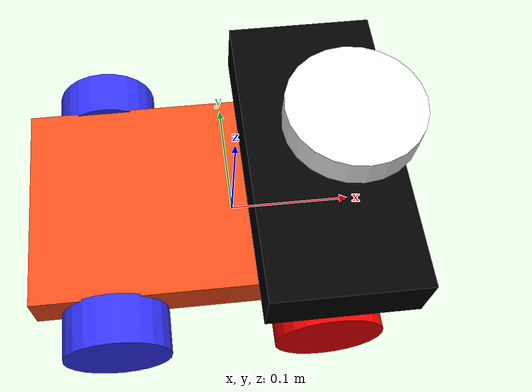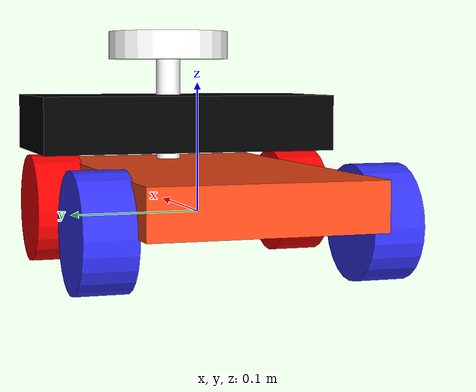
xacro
<?xml version="1.0"?>
<robot xmlns:xacro="http://www.ros.org/wiki/xacro">

    <xacro:include filename="inertial_macros.xacro" />

    <xacro:property name="chassis_length" value="0.290" />
    <xacro:property name="chassis_width" value="0.170" />
    <xacro:property name="chassis_height" value="0.036" />

    <xacro:property name="head_length" value="${chassis_length/2.5}" />
    <xacro:property name="head_width" value="${chassis_width*1.4}" />
    <xacro:property name="head_height" value="0.0448" />

    <xacro:property name="wheel_radius" value="0.0425" />
    <xacro:property name="wheel_thickness" value="0.038" />

    <xacro:property name="front_wheel_offset_x" value="${0.125 - wheel_radius}" />
    <xacro:property name="front_wheel_offset_y" value="${0.1024}" />
    <xacro:property name="front_wheel_offset_z" value="${wheel_radius}" />

    <xacro:property name="back_wheel_offset_x" value="${0.125 - wheel_radius}" />
    <xacro:property name="back_wheel_offset_y" value="${front_wheel_offset_y}" />
    <xacro:property name="back_wheel_offset_z" value="${front_wheel_offset_z}" />

    <xacro:property name="lidar_height" value="0.023" />
    <xacro:property name="lidar_offset_x" value="${front_wheel_offset_x + 0.02}" />
    <xacro:property name="lidar_offset_z" value="${chassis_height + head_height + front_wheel_offset_z}" />

    <xacro:property name="imu_length" value="0.030" />
    <xacro:property name="imu_width" value="0.015" />
    <xacro:property name="imu_offset_x" value="${front_wheel_offset_x + centre_of_rot_offset_x + imu_length/2 + 0.04}" />
    <xacro:property name="imu_offset_y" value="0.0" />
    <xacro:property name="imu_offset_z" value="${chassis_height + head_height + 0.02}" />

    <xacro:property name="chassis_mass" value="1.0" />
    <xacro:property name="lidar_mass" value="0.01" />
    <xacro:property name="head_mass" value="0.01" />
    <xacro:property name="imu_mass" value="0.001" />
    <xacro:property name="wheel_mass" value="0.05" />

    <xacro:property name="mu1" value="0.25" />
    <xacro:property name="mu2" value="0.25" />
    <xacro:property name="sl1" value="10.0" />
    <xacro:property name="sl2" value="10.0" />

    <xacro:property name="centre_of_rot_offset_x" value="${-0.02}" />

    <material name="white">
        <color rgba="1 1 1 1" />
    </material>

    <material name="orange">
        <color rgba="1 0.3 0.1 1" />
    </material>

    <material name="blue">
        <color rgba="0.2 0.2 1 1" />
    </material>

    <material name="black">
        <color rgba="0 0 0 1" />
    </material>

    <material name="red">
        <color rgba="1 0 0 1" />
    </material>

    <!-- BASE LINK -->

    <link name="base_link">

    </link>

    <!-- BASE_FOOTPRINT LINK -->

    <joint name="base_footprint_joint" type="fixed">
        <parent link="base_link" />
        <child link="base_footprint" />
        <origin xyz="0 0 0" rpy="0 0 0" />
    </joint>

    <link name="base_footprint">
    </link>

    <!-- CHASSIS LINK -->

    <joint name="chassis_joint" type="fixed">
        <parent link="base_link" />
        <child link="chassis" />
        <origin xyz="${centre_of_rot_offset_x} 0 ${-front_wheel_offset_z}" />
    </joint>

    <link name="chassis">
        <visual>
            <origin xyz="0 0 ${chassis_height/2 + front_wheel_offset_z}" />
            <geometry>
                <box size="${chassis_length} ${chassis_width} ${chassis_height}" />
            </geometry>
            <material name="orange" />
        </visual>
        <collision>
            <origin xyz="0 0 ${chassis_height/2  + front_wheel_offset_z}" />
            <geometry>
                <box size="${chassis_length} ${chassis_width} ${chassis_height}" />
            </geometry>
        </collision>
        <xacro:inertial_box mass="${chassis_mass}" x="${chassis_length}" y="${chassis_width}"
            z="${chassis_height}">
            <origin xyz="0 0 ${chassis_height/2  + front_wheel_offset_z}"
                rpy="0 0 0" />
        </xacro:inertial_box>
    </link>

    <gazebo reference="chassis">
        <material>Gazebo/Orange</material>
    </gazebo>

    <joint name="head_joint" type="fixed">
        <parent link="chassis" />
        <child link="head" />
        <origin xyz="${chassis_length/2 - head_length/2} 0 ${head_height/2 + front_wheel_offset_z}" />
    </joint>

    <link name="head">
        <visual>
            <origin xyz="0 0 ${head_height}" />
            <geometry>
                <box size="${head_length} ${head_width} ${head_height}" />
            </geometry>
            <material name="black" />
        </visual>
        <collision>
            <origin xyz="0 0 ${head_height}" />
            <geometry>
                <box size="${head_length} ${head_width} ${head_height}" />
            </geometry>
        </collision>
        <xacro:inertial_box mass="${head_mass}" x="${head_length}" y="${head_width}" z="${head_height}">
            <origin xyz="0 0 ${head_height}" rpy="0 0 0" />
        </xacro:inertial_box>
    </link>

    <gazebo reference="head">
        <material>Gazebo/Black</material>
    </gazebo>

    <joint name="front_left_joint" type="continuous">
        <parent link="base_link" />
        <child link="front_left" />
        <origin xyz="${front_wheel_offset_x + centre_of_rot_offset_x} ${front_wheel_offset_y} 0"
            rpy="-${pi/2} 0 0" />
        <axis xyz="0 0 1" />
    </joint>

    <link name="front_left">
        <visual>
            <geometry>
                <cylinder radius="${wheel_radius}" length="${wheel_thickness}" />
            </geometry>
            <material name="red" />
        </visual>
        <collision>
            <geometry>
                <sphere radius="${wheel_radius}" />
            </geometry>
        </collision>
        <xacro:inertial_cylinder mass="${wheel_mass}" length="${wheel_thickness}"
            radius="${wheel_radius}">
            <origin xyz="0 0 0" rpy="0 0 0" />
        </xacro:inertial_cylinder>
    </link>

    <gazebo reference="front_left">
        <material>Gazebo/Red</material>
    </gazebo>

    <joint name="front_right_joint" type="continuous">
        <parent link="base_link" />
        <child link="front_right" />
        <origin xyz="${front_wheel_offset_x + centre_of_rot_offset_x} ${-front_wheel_offset_y} 0"
            rpy="${pi/2} 0 0" />
        <axis xyz="0 0 -1" />
    </joint>

    <link name="front_right">
        <visual>
            <geometry>
                <cylinder radius="${wheel_radius}" length="${wheel_thickness}" />
            </geometry>
            <material name="red" />
        </visual>
        <collision>
            <geometry>
                <sphere radius="${wheel_radius}" />
            </geometry>
        </collision>
        <xacro:inertial_cylinder mass="${wheel_mass}" length="${wheel_thickness}"
            radius="${wheel_radius}">
            <origin xyz="0 0 0" rpy="0 0 0" />
        </xacro:inertial_cylinder>
    </link>

    <gazebo reference="front_right">
        <material>Gazebo/Red</material>
    </gazebo>

    <joint name="back_left_joint" type="continuous">
        <parent link="base_link" />
        <child link="back_left" />
        <origin xyz="${-back_wheel_offset_x + centre_of_rot_offset_x} ${back_wheel_offset_y} 0" rpy="-${pi/2} 0 0" />
        <axis xyz="0 0 1" />
    </joint>

    <link name="back_left">
        <visual>
            <geometry>
                <cylinder radius="${wheel_radius}" length="${wheel_thickness}" />
            </geometry>
            <material name="blue" />
        </visual>
        <collision>
            <geometry>
                <sphere radius="${wheel_radius}" />
            </geometry>
        </collision>
        <xacro:inertial_cylinder mass="${wheel_mass}" length="${wheel_thickness}"
            radius="${wheel_radius}">
            <origin xyz="0 0 0" rpy="0 0 0" />
        </xacro:inertial_cylinder>
    </link>

    <gazebo reference="back_left">
        <material>Gazebo/Blue</material>
    </gazebo>

    <joint name="back_right_joint" type="continuous">
        <parent link="base_link" />
        <child link="back_right" />
        <origin xyz="${-back_wheel_offset_x + centre_of_rot_offset_x} ${-back_wheel_offset_y} 0" rpy="${pi/2} 0 0" />
        <axis xyz="0 0 -1" />
    </joint>

    <link name="back_right">
        <visual>
            <geometry>
                <cylinder radius="${wheel_radius}" length="${wheel_thickness}" />
            </geometry>
            <material name="blue" />
        </visual>
        <collision>
            <geometry>
                <sphere radius="${wheel_radius}" />
            </geometry>
        </collision>
        <xacro:inertial_cylinder mass="${wheel_mass}" length="${wheel_thickness}"
            radius="${wheel_radius}">
            <origin xyz="0 0 0" rpy="0 0 0" />
        </xacro:inertial_cylinder>
    </link>

    <gazebo reference="back_right">
        <material>Gazebo/Blue</material>
    </gazebo>

    <joint name="lidar_joint" type="fixed">
        <parent link="chassis" />
        <child link="laser_frame" />
        <origin xyz="${lidar_offset_x} 0 ${lidar_offset_z + 0.05}" rpy="0 0 0" />
    </joint>

    <link name="laser_frame">
        <visual>
            <geometry>
                <cylinder radius="0.05" length="${lidar_height}" />
            </geometry>
            <material name="white" />
        </visual>
        <visual>
            <origin xyz="0 0 -0.05" />
            <geometry>
                <cylinder radius="0.01" length="0.1" />
            </geometry>
            <material name="white" />
        </visual>
        <collision>
            <geometry>
                <cylinder radius="0.05" length="${lidar_height}" />
            </geometry>
        </collision>
        <xacro:inertial_cylinder mass="${lidar_mass}" length="0.04" radius="0.05">
            <origin xyz="0 0 0" rpy="0 0 0" />
        </xacro:inertial_cylinder>
    </link>

    <gazebo reference="laser_frame">
        <material>Gazebo/White</material>

        <sensor name="laser" type="gpu_lidar">
            <pose relative_to='laser_frame'> 0 0 0 0 0 0 </pose>
            <topic>scan</topic>
            <update_rate>10</update_rate>
            <gz_frame_id>laser_frame</gz_frame_id>
            <lidar>
                <scan>
                    <horizontal>
                        <samples>360</samples>
                        <resolution>1</resolution>
                        <min_angle>-3.14</min_angle>
                        <max_angle>3.14</max_angle>
                    </horizontal>
                </scan>
                <range>
                    <min>0.3</min>
                    <max>12</max>
                </range>
             </lidar>
            <always_on>true</always_on>
            <visualize>true</visualize>
        </sensor>
    </gazebo>

    <joint name="imu_joint" type="fixed">
        <parent link="chassis" />
        <child link="imu_link" />
        <origin xyz="${imu_offset_x} ${imu_offset_y} ${imu_offset_z}" rpy="0 0 ${-pi/2}" />
    </joint>

    <link name="imu_link">
        <visual>
            <geometry>
                <box size="${imu_length} ${imu_width} 0.01" />
            </geometry>
            <material name="white" />
        </visual>
        <visual>
            <geometry>
                <box size="${imu_length} ${imu_width} 0.01" />
            </geometry>
        </visual>
        <collision>
            <geometry>
                <box size="${imu_length} ${imu_width} 0.01" />
            </geometry>
        </collision>
        <xacro:inertial_box mass="${imu_mass}" x="${imu_length}" y="${imu_length}" z="0.01">
            <origin xyz="0 0 0" rpy="0 0 0" />
        </xacro:inertial_box>
    </link>

    <gazebo reference="imu_link">
        <material>Gazebo/White</material>
        <gravity>true</gravity>

        <sensor name="imu_sensor" type="imu">
            <always_on>true</always_on>
            <update_rate>30</update_rate>
            <visualize>false</visualize>
            <initialOrientationAsReference>true</initialOrientationAsReference>
            <topic>imu_broadcaster/imu</topic>
            <gz_frame_id>imu_link</gz_frame_id>
        </sensor>

    </gazebo>

</robot>
